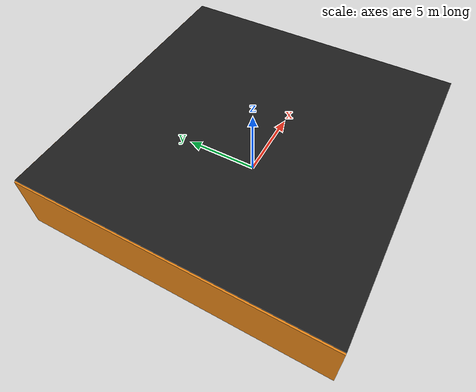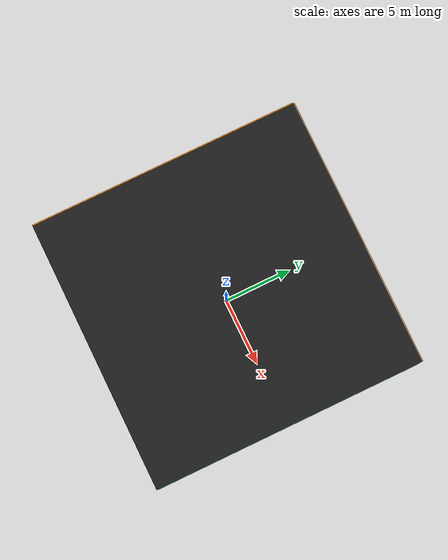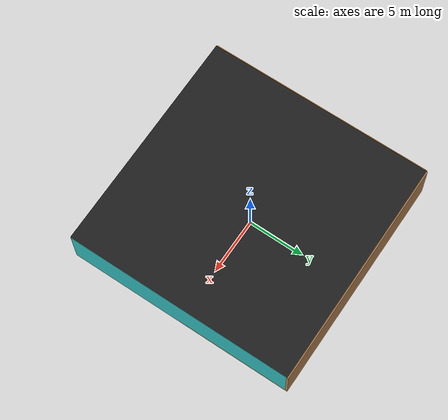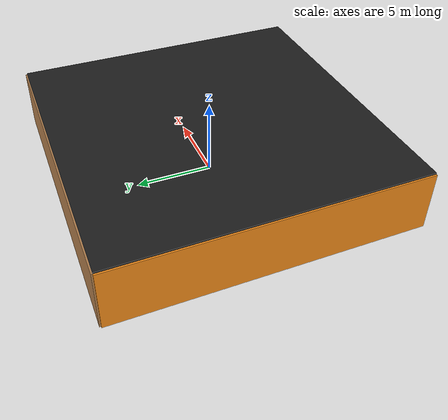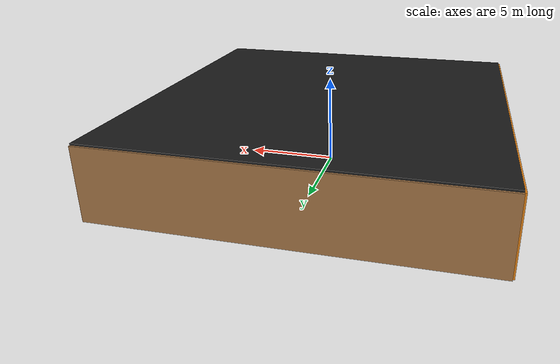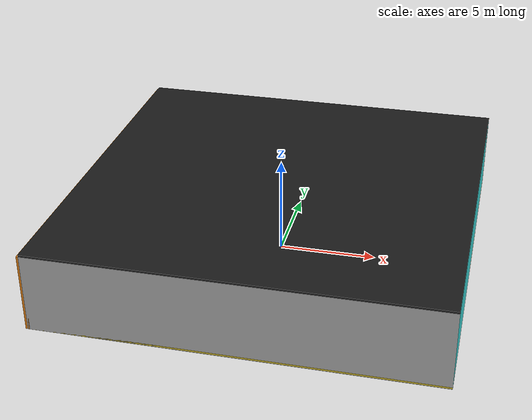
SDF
<sdf version="1.4">
 <world name="default">
  <physics type="ode">
   <max_step_size>0.001</max_step_size>
   <real_time_factor>1</real_time_factor>
   <real_time_update_rate>1000</real_time_update_rate>
   <gravity>0 0 -9.8</gravity>
  </physics>
  <scene><ambient>0.4 0.4 0.4 1</ambient><background>0.7 0.7 0.7 1</background><shadows>1</shadows></scene>
  <model name="Surrounding">
   <static>1</static>
   <link name="Ceiling">
    <collision name="Ceiling_Collision"><geometry><box><size>20 20 0.1</size></box></geometry></collision>
    <visual name="Ceiling_Visual">
     <geometry><box><size>20 20 0.1</size></box></geometry>
     <material>
      <script><uri>file://media/materials/scripts/gazebo.material</uri><name>Gazebo/FlatBlack</name></script>
     </material>
    </visual>
    <pose>0 0 4.05 0 0 0</pose>
   </link>
   <link name="Wall_South">
    <collision name="Wall_South_Collision">
     <geometry><box><size>20 0 4</size></box></geometry>
     <pose>0 0 2 0 -0 0</pose>
    </collision>
    <visual name="Wall_South_Visual">
     <pose>0 0 2 0 -0 0</pose>
     <geometry><box><size>20 0 4</size></box></geometry>
     <material>
      <script><uri>file://media/materials/scripts/gazebo.material</uri><name>Gazebo/CloudySky</name></script>
     </material>
    </visual>
    <velocity_decay><linear>0</linear><angular>0</angular></velocity_decay>
    <pose>0 -10 0 0 -0 0</pose>
   </link>
   <link name="Wall_East">
    <collision name="Wall_21_Collision">
     <geometry><box><size>20 0 4</size></box></geometry>
     <pose>0 0 2 0 -0 0</pose>
    </collision>
    <visual name="Wall_21_Visual">
     <pose>0 0 2 0 -0 0</pose>
     <geometry><box><size>20 0 4</size></box></geometry>
     <material>
      <script>
       <uri>file://media/materials/scripts/gazebo.material</uri>
       <name>Gazebo/TurquoiseGlowOutline</name>
      </script>
     </material>
    </visual>
    <velocity_decay><linear>0</linear><angular>0</angular></velocity_decay>
    <pose>10 0 0 0 -0 1.5708</pose>
   </link>
   <link name="Wall_North">
    <collision name="Wall_22_Collision">
     <geometry><box><size>20 0.2 4</size></box></geometry>
     <pose>0 0 2 0 -0 0</pose>
    </collision>
    <visual name="Wall_22_Visual">
     <pose>0 0 2 0 -0 0</pose>
     <geometry><box><size>20 0.2 4</size></box></geometry>
     <material>
      <script><uri>file://media/materials/scripts/gazebo.material</uri><name>Gazebo/Wood</name></script>
     </material>
    </visual>
    <velocity_decay><linear>0</linear><angular>0</angular></velocity_decay>
    <pose>0 10 0 0 -0 0</pose>
   </link>
   <link name="Wall_West">
    <collision name="Wall_23_Collision">
     <geometry><box><size>20 0.2 4</size></box></geometry>
     <pose>0 0 2 0 -0 0</pose>
    </collision>
    <visual name="Wall_23_Visual">
     <pose>0 0 2 0 -0 0</pose>
     <geometry><box><size>20 0.2 4</size></box></geometry>
     <material>
      <script><uri>file://media/materials/scripts/gazebo.material</uri><name>Gazebo/Orange</name></script>
     </material>
    </visual>
    <velocity_decay><linear>0</linear><angular>0</angular></velocity_decay>
    <pose>-10 0 0 0 0 -1.5708</pose>
   </link>
   <link name="Ground_link">
    <collision name="collision">
     <pose>0 0 .05 0 -0 0</pose>
     <geometry><box><size>20 20 0.1</size></box></geometry>
    </collision>
    <visual name="visual">
     <pose>0 0 .05 0 -0 0</pose>
     <geometry><box><size>20 20 0.1</size></box></geometry>
     <material>
      <script><uri>file://media/materials/scripts/gazebo.material</uri><name>Gazebo/ZincYellow</name></script>
     </material>
    </visual>
   </link>
   <static>1</static>
  </model>
  <spherical_coordinates>
   <surface_model>EARTH_WGS84</surface_model>
   <latitude_deg>0</latitude_deg>
   <longitude_deg>0</longitude_deg>
   <elevation>0</elevation>
   <heading_deg>0</heading_deg>
  </spherical_coordinates>
  <light name="lightball_0" type="diffuse">
   <diffuse>0.8 0.8 0.8 1</diffuse>
   <specular>0.2 0.2 0.2 1</specular>
   <attenuation>
    <range>100</range>
    <constant>0.7</constant>
    <linear>0.01</linear>
    <quadratic>0.001</quadratic>
   </attenuation>
   <direction>-0.5 0.1 -0.9</direction>
   <pose>5.86002757165 5.35154330978 1.77042086496 0 0 0</pose>
  </light>
  <light name="lightball_1" type="diffuse">
   <diffuse>0.8 0.8 0.8 1</diffuse>
   <specular>0.2 0.2 0.2 1</specular>
   <attenuation>
    <range>100</range>
    <constant>0.7</constant>
    <linear>0.01</linear>
    <quadratic>0.001</quadratic>
   </attenuation>
   <direction>-0.5 0.1 -0.9</direction>
   <pose>-1.28090808432 -3.22107599833 1.19295965467 0 0 0</pose>
  </light>
  <light name="lightball_2" type="diffuse">
   <diffuse>0.8 0.8 0.8 1</diffuse>
   <specular>0.2 0.2 0.2 1</specular>
   <attenuation>
    <range>100</range>
    <constant>0.7</constant>
    <linear>0.01</linear>
    <quadratic>0.001</quadratic>
   </attenuation>
   <direction>-0.5 0.1 -0.9</direction>
   <pose>3.56200734623 4.35582463428 2.61011741612 0 0 0</pose>
  </light>
  <light name="lightball_3" type="diffuse">
   <diffuse>0.8 0.8 0.8 1</diffuse>
   <specular>0.2 0.2 0.2 1</specular>
   <attenuation>
    <range>100</range>
    <constant>0.7</constant>
    <linear>0.01</linear>
    <quadratic>0.001</quadratic>
   </attenuation>
   <direction>-0.5 0.1 -0.9</direction>
   <pose>2.72665410224 4.90855440362 2.85963422484 0 0 0</pose>
  </light>
  <light name="lightball_4" type="diffuse">
   <diffuse>0.8 0.8 0.8 1</diffuse>
   <specular>0.2 0.2 0.2 1</specular>
   <attenuation>
    <range>100</range>
    <constant>0.7</constant>
    <linear>0.01</linear>
    <quadratic>0.001</quadratic>
   </attenuation>
   <direction>-0.5 0.1 -0.9</direction>
   <pose>2.64915571916 6.65394911639 1.52062025588 0 0 0</pose>
  </light>
  <light name="lightball_5" type="diffuse">
   <diffuse>0.8 0.8 0.8 1</diffuse>
   <specular>0.2 0.2 0.2 1</specular>
   <attenuation>
    <range>100</range>
    <constant>0.7</constant>
    <linear>0.01</linear>
    <quadratic>0.001</quadratic>
   </attenuation>
   <direction>-0.5 0.1 -0.9</direction>
   <pose>9.76033789072 -4.36430407269 2.34576005442 0 0 0</pose>
  </light>
  <light name="lightball_6" type="diffuse">
   <diffuse>0.8 0.8 0.8 1</diffuse>
   <specular>0.2 0.2 0.2 1</specular>
   <attenuation>
    <range>100</range>
    <constant>0.7</constant>
    <linear>0.01</linear>
    <quadratic>0.001</quadratic>
   </attenuation>
   <direction>-0.5 0.1 -0.9</direction>
   <pose>-3.49628556696 -4.32041587124 2.22871570772 0 0 0</pose>
  </light>
  <light name="lightball_7" type="diffuse">
   <diffuse>0.8 0.8 0.8 1</diffuse>
   <specular>0.2 0.2 0.2 1</specular>
   <attenuation>
    <range>100</range>
    <constant>0.7</constant>
    <linear>0.01</linear>
    <quadratic>0.001</quadratic>
   </attenuation>
   <direction>-0.5 0.1 -0.9</direction>
   <pose>-3.64169426468 2.54510402807 1.4532130817 0 0 0</pose>
  </light>
  <light name="lightball_8" type="diffuse">
   <diffuse>0.8 0.8 0.8 1</diffuse>
   <specular>0.2 0.2 0.2 1</specular>
   <attenuation>
    <range>100</range>
    <constant>0.7</constant>
    <linear>0.01</linear>
    <quadratic>0.001</quadratic>
   </attenuation>
   <direction>-0.5 0.1 -0.9</direction>
   <pose>0.495698939929 -5.8584982578 2.277432255 0 0 0</pose>
  </light>
  <light name="lightball_9" type="diffuse">
   <diffuse>0.8 0.8 0.8 1</diffuse>
   <specular>0.2 0.2 0.2 1</specular>
   <attenuation>
    <range>100</range>
    <constant>0.7</constant>
    <linear>0.01</linear>
    <quadratic>0.001</quadratic>
   </attenuation>
   <direction>-0.5 0.1 -0.9</direction>
   <pose>-8.55874678057 -7.32452887899 3.20011124815 0 0 0</pose>
  </light>
  <light name="lightball_10" type="diffuse">
   <diffuse>0.8 0.8 0.8 1</diffuse>
   <specular>0.2 0.2 0.2 1</specular>
   <attenuation>
    <range>100</range>
    <constant>0.7</constant>
    <linear>0.01</linear>
    <quadratic>0.001</quadratic>
   </attenuation>
   <direction>-0.5 0.1 -0.9</direction>
   <pose>8.60503869276 -9.88144165785 2.93635017293 0 0 0</pose>
  </light>
  <light name="lightball_11" type="diffuse">
   <diffuse>0.8 0.8 0.8 1</diffuse>
   <specular>0.2 0.2 0.2 1</specular>
   <attenuation>
    <range>100</range>
    <constant>0.7</constant>
    <linear>0.01</linear>
    <quadratic>0.001</quadratic>
   </attenuation>
   <direction>-0.5 0.1 -0.9</direction>
   <pose>3.25737282009 -0.891403645511 0.898414667676 0 0 0</pose>
  </light>
  <include>
   <uri>model://construction_cone</uri>
   <pose>-4.70028601932 5.52499611762 0 0 0 2.23589961661</pose>
  </include>
  <include><uri>model://cabinet</uri><pose>-0.315934439734 -1.5552964245 0 0 0 0.113635639945</pose></include>
  <include><uri>model://cabinet</uri><pose>1.24611716535 -1.86676107537 0 0 0 1.94053452668</pose></include>
  <include><uri>model://table</uri><pose>1.70045843368 0.439510698473 0 0 0 0.0541981554605</pose></include>
  <include><uri>model://cabinet</uri><pose>8.36429707191 -5.28289907331 0 0 0 2.52237750916</pose></include>
 </world>
</sdf>

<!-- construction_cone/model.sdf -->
<sdf version="1.5">
  <model name="Construction Cone">
    <link name="link">
      <collision name="collision">
        <geometry>
          <mesh>
            <scale>10 10 10</scale>
            <uri>file://isr-testbed/construction_cone/meshes/construction_cone.dae</uri>
          </mesh>
        </geometry>
      </collision>
      <visual name="visual">
        <geometry>
          <mesh>
            <scale>10 10 10</scale>
            <uri>file://isr-testbed/construction_cone/meshes/construction_cone.dae</uri>
          </mesh>
        </geometry>
      </visual>
    </link>
  </model>
</sdf>

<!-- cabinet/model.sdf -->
<sdf version="1.5">
  <model name="cabinet">
    <static>true</static>
    <link name="cabinet_bottom_plate">
      <inertial>
        <pose>0 0 -1 0 0 0</pose>
        <inertia>
          <ixx>2.050000</ixx>
          <ixy>0</ixy>
          <ixz>0</ixz>
          <iyy>2.050000</iyy>
          <iyz>0</iyz>
          <izz>2.050000</izz>
        </inertia>
        <mass>25.000000</mass>
      </inertial>
      <collision name="cabinet_bottom_plate_geom">
        <pose>0 0 0.010000 0 0 0</pose>
        <geometry>
          <box>
            <size>0.450000 0.450000 0.020000</size>
          </box>
        </geometry>
      </collision>
      <visual name="cabinet_bottom_plate_geom_visual">
        <pose>0 0 0.010000 0 0 0</pose>
        <geometry>
          <box>
            <size>0.450000 0.450000 0.020000</size>
          </box>
        </geometry>
        <material>
          <script>
            <uri>model://media/materials/scripts/gazebo.material</uri>
            <name>Gazebo/Wood</name>
          </script>
        </material>
      </visual>
      <collision name="cabinet_bottom_plate_geom_cabinet_back_plate">
        <pose>0.235000 0 0.510000 0 0 0</pose>
        <geometry>
          <box>
            <size>0.020000 0.450000 1.020000</size>
          </box>
        </geometry>
      </collision>
      <visual name="cabinet_bottom_plate_geom_cabinet_back_plate_visual">
        <pose>0.235000 0 0.510000 0 0 0</pose>
        <geometry>
          <box>
            <size>0.020000 0.450000 1.020000</size>
          </box>
        </geometry>
        <material>
          <script>
            <uri>model://media/materials/scripts/gazebo.material</uri>
            <name>Gazebo/Wood</name>
          </script>
        </material>
      </visual>
      <collision name="cabinet_bottom_plate_geom_cabinet_left_plate">
        <pose>0 0.235000 0.510000 0 0 0</pose>
        <geometry>
          <box>
            <size>0.450000 0.020000 1.020000</size>
          </box>
        </geometry>
      </collision>
      <visual name="cabinet_bottom_plate_geom_cabinet_left_plate_visual">
        <pose>0 0.235000 0.510000 0 0 0</pose>
        <geometry>
          <box>
            <size>0.450000 0.020000 1.020000</size>
          </box>
        </geometry>
        <material>
          <script>
            <uri>model://media/materials/scripts/gazebo.material</uri>
            <name>Gazebo/Wood</name>
          </script>
        </material>
      </visual>
      <collision name="cabinet_bottom_plate_geom_cabinet_middle_plate">
        <pose>0 0 0.510000 0 0 0</pose>
        <geometry>
          <box>
            <size>0.450000 0.450000 0.020000</size>
          </box>
        </geometry>
      </collision>
      <visual name="cabinet_bottom_plate_geom_cabinet_middle_plate_visual">
        <pose>0 0 0.510000 0 0 0</pose>
        <geometry>
          <box>
            <size>0.450000 0.450000 0.020000</size>
          </box>
        </geometry>
        <material>
          <script>
            <uri>model://media/materials/scripts/gazebo.material</uri>
            <name>Gazebo/Wood</name>
          </script>
        </material>
      </visual>
      <collision name="cabinet_bottom_plate_geom_cabinet_right_plate">
        <pose>0 -0.235000 0.510000 0 0 0</pose>
        <geometry>
          <box>
            <size>0.450000 0.020000 1.020000</size>
          </box>
        </geometry>
      </collision>
      <visual name="cabinet_bottom_plate_geom_cabinet_right_plate_visual">
        <pose>0 -0.235000 0.510000 0 0 0</pose>
        <geometry>
          <box>
            <size>0.450000 0.020000 1.020000</size>
          </box>
        </geometry>
        <material>
          <script>
            <uri>model://media/materials/scripts/gazebo.material</uri>
            <name>Gazebo/Wood</name>
          </script>
        </material>
      </visual>
      <collision name="cabinet_bottom_plate_geom_cabinet_top_plate">
        <pose>0 0 1.010000 0 0 0</pose>
        <geometry>
          <box>
            <size>0.450000 0.450000 0.020000</size>
          </box>
        </geometry>
      </collision>
      <visual name="cabinet_bottom_plate_geom_cabinet_top_plate_visual">
        <pose>0 0 1.010000 0 0 0</pose>
        <geometry>
          <box>
            <size>0.450000 0.450000 0.020000</size>
          </box>
        </geometry>
        <material>
          <script>
            <uri>model://media/materials/scripts/gazebo.material</uri>
            <name>Gazebo/Wood</name>
          </script>
        </material>
      </visual>
    </link>
  </model>
</sdf>

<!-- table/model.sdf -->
<sdf version="1.5">
  <model name="table">
    <static>true</static>
    <link name="link">
      <collision name="surface">
        <pose>0 0 1.0 0 0 0</pose>
        <geometry>
          <box>
            <size>1.5 0.8 0.03</size>
          </box>
        </geometry>
        <surface>
          <friction>
            <ode>
              <mu>0.6</mu>
              <mu2>0.6</mu2>
            </ode>
          </friction>
        </surface>
      </collision>
      <visual name="visual1">
        <pose>0 0 1.0 0 0 0</pose>
        <geometry>
          <box>
            <size>1.5 0.8 0.03</size>
          </box>
        </geometry>
        <material>
          <script>
            <uri>model://media/materials/scripts/gazebo.material</uri>
            <name>Gazebo/Wood</name>
          </script>
        </material>
      </visual>
      <collision name="front_left_leg">
        <pose>0.68 0.38 0.5 0 0 0</pose>
        <geometry>
          <cylinder>
            <radius>0.02</radius>
            <length>1.0</length>
          </cylinder>
        </geometry>
      </collision>
      <visual name="front_left_leg">
        <pose>0.68 0.38 0.5 0 0 0</pose>
        <geometry>
          <cylinder>
            <radius>0.02</radius>
            <length>1.0</length>
          </cylinder>
        </geometry>
        <material>
          <script>
            <uri>model://media/materials/scripts/gazebo.material</uri>
            <name>Gazebo/Grey</name>
          </script>
        </material>
      </visual>
      <collision name="front_right_leg">
        <pose>0.68 -0.38 0.5 0 0 0</pose>
        <geometry>
          <cylinder>
            <radius>0.02</radius>
            <length>1.0</length>
          </cylinder>
        </geometry>
      </collision>
      <visual name="front_right_leg">
        <pose>0.68 -0.38 0.5 0 0 0</pose>
        <geometry>
          <cylinder>
            <radius>0.02</radius>
            <length>1.0</length>
          </cylinder>
        </geometry>
        <material>
          <script>
            <uri>model://media/materials/scripts/gazebo.material</uri>
            <name>Gazebo/Grey</name>
          </script>
        </material>
      </visual>
      <collision name="back_right_leg">
        <pose>-0.68 -0.38 0.5 0 0 0</pose>
        <geometry>
          <cylinder>
            <radius>0.02</radius>
            <length>1.0</length>
          </cylinder>
        </geometry>
      </collision>
      <visual name="back_right_leg">
        <pose>-0.68 -0.38 0.5 0 0 0</pose>
        <geometry>
          <cylinder>
            <radius>0.02</radius>
            <length>1.0</length>
          </cylinder>
        </geometry>
        <material>
          <script>
            <uri>model://media/materials/scripts/gazebo.material</uri>
            <name>Gazebo/Grey</name>
          </script>
        </material>
      </visual>
      <collision name="back_left_leg">
        <pose>-0.68 0.38 0.5 0 0 0</pose>
        <geometry>
          <cylinder>
            <radius>0.02</radius>
            <length>1.0</length>
          </cylinder>
        </geometry>
      </collision>
      <visual name="back_left_leg">
        <pose>-0.68 0.38 0.5 0 0 0</pose>
        <geometry>
          <cylinder>
            <radius>0.02</radius>
            <length>1.0</length>
          </cylinder>
        </geometry>
        <material>
          <script>
            <uri>model://media/materials/scripts/gazebo.material</uri>
            <name>Gazebo/Grey</name>
          </script>
        </material>
      </visual>
    </link>
  </model>
</sdf>
